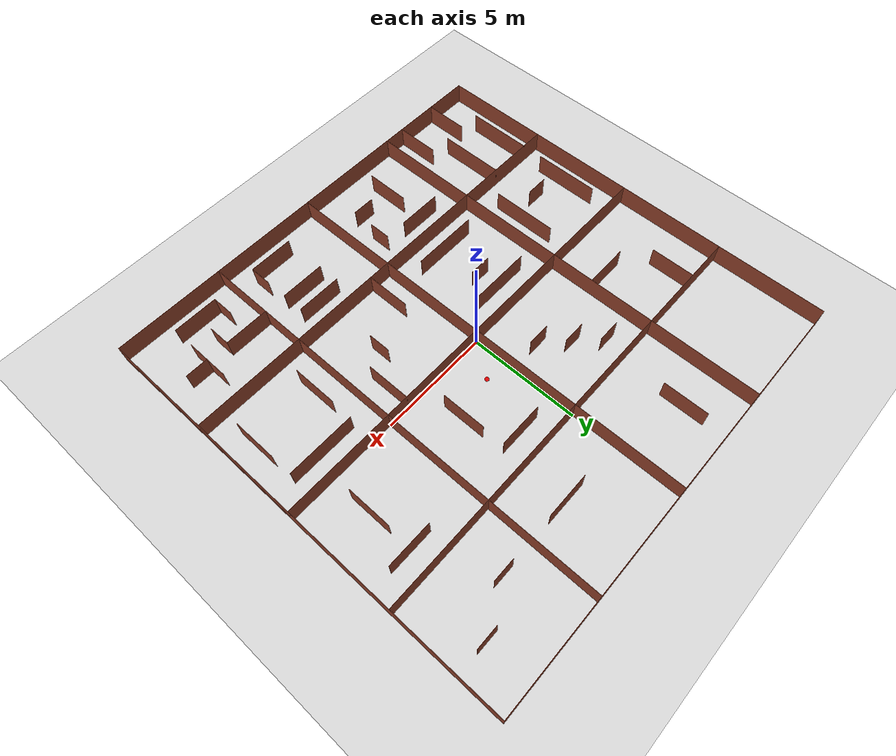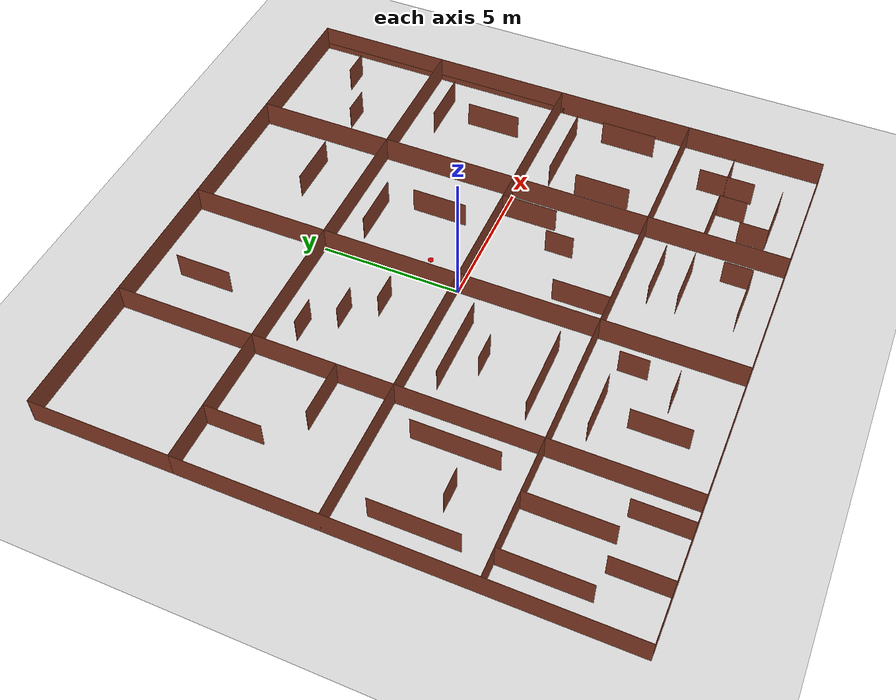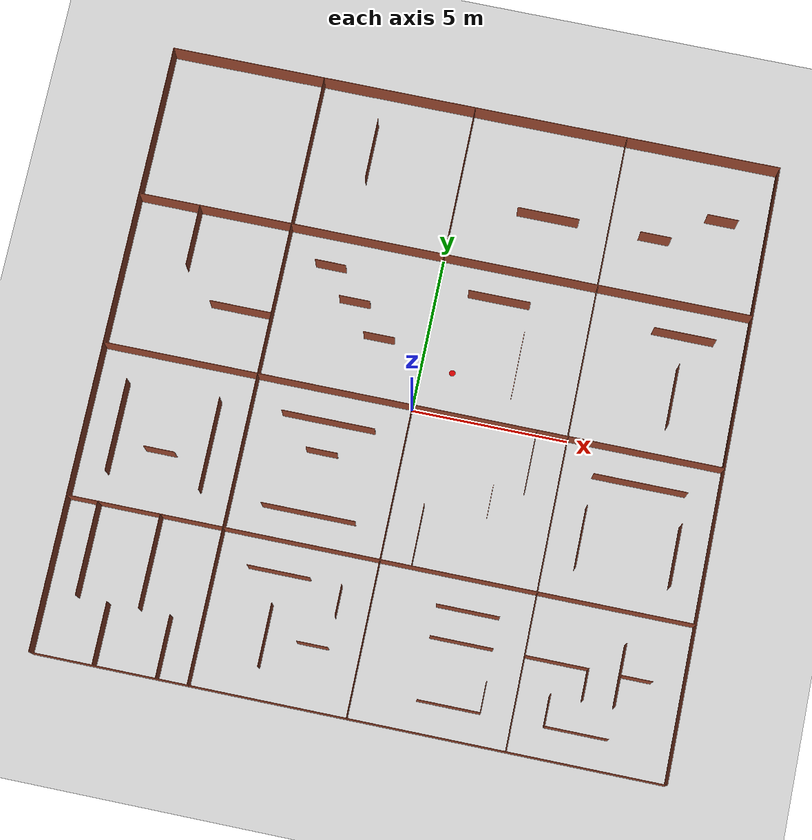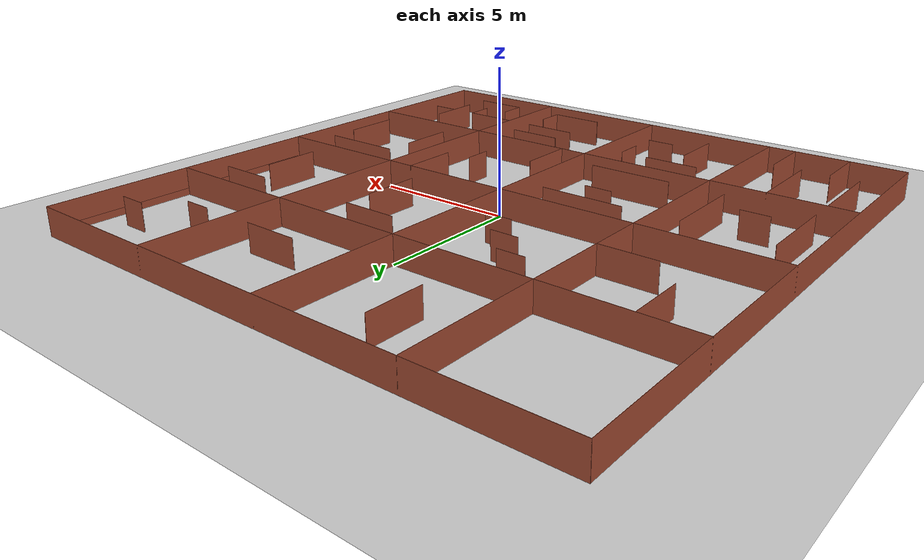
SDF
<sdf version="1.7">
 <world name="default">
  <light name="sun" type="directional">
   <pose>0 0 10 0 -0 0</pose>
   <diffuse>0.8 0.8 0.8 1</diffuse>
   <specular>0.2 0.2 0.2 1</specular>
   <attenuation>
    <range>1000</range>
    <constant>0.9</constant>
    <linear>0.01</linear>
    <quadratic>0.001</quadratic>
   </attenuation>
   <direction>-0.5 0.1 -0.9</direction>
   <spot><inner_angle>0</inner_angle><outer_angle>0</outer_angle><falloff>0</falloff></spot>
  </light>
  <model name="ground_plane">
   <static>1</static>
   <link name="link">
    <collision name="collision">
     <geometry><plane><normal>0 0 1</normal><size>100 100</size></plane></geometry>
     <surface>
      <contact><collide_bitmask>65535</collide_bitmask></contact>
      <friction><ode><mu>100</mu><mu2>50</mu2></ode></friction>
     </surface>
    </collision>
    <visual name="visual">
     <cast_shadows>0</cast_shadows>
     <geometry><plane><normal>0 0 1</normal><size>100 100</size></plane></geometry>
     <material>
      <script><uri>file://media/materials/scripts/gazebo.material</uri><name>Gazebo/Grey</name></script>
     </material>
    </visual>
   </link>
  </model>
  <gravity>0 0 -9.8</gravity>
  <magnetic_field>6e-06 2.3e-05 -4.2e-05</magnetic_field>
  <atmosphere type="adiabatic"/>
  <physics type="ode">
   <max_step_size>0.001</max_step_size>
   <real_time_factor>1</real_time_factor>
   <real_time_update_rate>1000</real_time_update_rate>
  </physics>
  <scene><ambient>0.4 0.4 0.4 1</ambient><background>0.7 0.7 0.7 1</background><shadows>1</shadows></scene>
  <spherical_coordinates>
   <surface_model>EARTH_WGS84</surface_model>
   <latitude_deg>0</latitude_deg>
   <longitude_deg>0</longitude_deg>
   <elevation>0</elevation>
   <heading_deg>0</heading_deg>
  </spherical_coordinates>
  <model name="cur_1.0">
   <link name="Wall_101">
    <collision name="Wall_101_Collision">
     <geometry><box><size>0.01 0.01 1</size></box></geometry>
     <pose>0 0 0.5 0 -0 0</pose>
    </collision>
    <visual name="Wall_101_Visual">
     <pose>0 0 0.5 0 -0 0</pose>
     <geometry><box><size>0.01 0.01 1</size></box></geometry>
     <material>
      <script><uri>file://media/materials/scripts/gazebo.material</uri><name>Gazebo/Bricks</name></script>
      <ambient>1 1 1 1</ambient>
     </material>
     <meta><layer>0</layer></meta>
    </visual>
    <pose>2 -9 0 0 -0 0</pose>
   </link>
   <link name="Wall_109">
    <collision name="Wall_109_Collision">
     <geometry><box><size>3.01 0.01 1</size></box></geometry>
     <pose>0 0 0.5 0 -0 0</pose>
    </collision>
    <visual name="Wall_109_Visual">
     <pose>0 0 0.5 0 -0 0</pose>
     <geometry><box><size>3.01 0.01 1</size></box></geometry>
     <material>
      <script><uri>file://media/materials/scripts/gazebo.material</uri><name>Gazebo/Bricks</name></script>
      <ambient>1 1 1 1</ambient>
     </material>
     <meta><layer>0</layer></meta>
    </visual>
    <pose>7.5 -1 0 0 -0 0</pose>
   </link>
   <link name="Wall_113">
    <collision name="Wall_113_Collision">
     <geometry><box><size>2.01 0.01 1</size></box></geometry>
     <pose>0 0 0.5 0 -0 0</pose>
    </collision>
    <visual name="Wall_113_Visual">
     <pose>0 0 0.5 0 -0 0</pose>
     <geometry><box><size>2.01 0.01 1</size></box></geometry>
     <material>
      <script><uri>file://media/materials/scripts/gazebo.material</uri><name>Gazebo/Bricks</name></script>
      <ambient>1 1 1 1</ambient>
     </material>
     <meta><layer>0</layer></meta>
    </visual>
    <pose>1 -4 0 0 -0 -1.5708</pose>
   </link>
   <link name="Wall_115">
    <collision name="Wall_115_Collision">
     <geometry><box><size>1.01 0.01 1</size></box></geometry>
     <pose>0 0 0.5 0 -0 0</pose>
    </collision>
    <visual name="Wall_115_Visual">
     <pose>0 0 0.5 0 -0 0</pose>
     <geometry><box><size>1.01 0.01 1</size></box></geometry>
     <material>
      <script><uri>file://media/materials/scripts/gazebo.material</uri><name>Gazebo/Bricks</name></script>
      <ambient>1 1 1 1</ambient>
     </material>
     <meta><layer>0</layer></meta>
    </visual>
    <pose>3 -2.5 0 0 -0 -1.5708</pose>
   </link>
   <link name="Wall_117">
    <collision name="Wall_117_Collision">
     <geometry><box><size>2.01 0.01 1</size></box></geometry>
     <pose>0 0 0.5 0 -0 0</pose>
    </collision>
    <visual name="Wall_117_Visual">
     <pose>0 0 0.5 0 -0 0</pose>
     <geometry><box><size>2.01 0.01 1</size></box></geometry>
     <material>
      <script><uri>file://media/materials/scripts/gazebo.material</uri><name>Gazebo/Bricks</name></script>
      <ambient>1 1 1 1</ambient>
     </material>
     <meta><layer>0</layer></meta>
    </visual>
    <pose>4 -1 0 0 -0 -1.5708</pose>
   </link>
   <link name="Wall_122">
    <collision name="Wall_122_Collision">
     <geometry><box><size>2.01 0.01 1</size></box></geometry>
     <pose>0 0 0.5 0 -0 0</pose>
    </collision>
    <visual name="Wall_122_Visual">
     <pose>0 0 0.5 0 -0 0</pose>
     <geometry><box><size>2.01 0.01 1</size></box></geometry>
     <material>
      <script><uri>file://media/materials/scripts/gazebo.material</uri><name>Gazebo/Bricks</name></script>
      <ambient>1 1 1 1</ambient>
     </material>
     <meta><layer>0</layer></meta>
    </visual>
    <pose>-8 -9 0 0 -0 -1.5708</pose>
   </link>
   <link name="Wall_125">
    <collision name="Wall_125_Collision">
     <geometry><box><size>3.01 0.01 1</size></box></geometry>
     <pose>0 0 0.5 0 -0 0</pose>
    </collision>
    <visual name="Wall_125_Visual">
     <pose>0 0 0.5 0 -0 0</pose>
     <geometry><box><size>3.01 0.01 1</size></box></geometry>
     <material>
      <script><uri>file://media/materials/scripts/gazebo.material</uri><name>Gazebo/Bricks</name></script>
      <ambient>1 1 1 1</ambient>
     </material>
     <meta><layer>0</layer></meta>
    </visual>
    <pose>-7 -6.5 0 0 -0 -1.5708</pose>
   </link>
   <link name="Wall_127">
    <collision name="Wall_127_Collision">
     <geometry><box><size>2.01 0.01 1</size></box></geometry>
     <pose>0 0 0.5 0 -0 0</pose>
    </collision>
    <visual name="Wall_127_Visual">
     <pose>0 0 0.5 0 -0 0</pose>
     <geometry><box><size>2.01 0.01 1</size></box></geometry>
     <material>
      <script><uri>file://media/materials/scripts/gazebo.material</uri><name>Gazebo/Bricks</name></script>
      <ambient>1 1 1 1</ambient>
     </material>
     <meta><layer>0</layer></meta>
    </visual>
    <pose>-6 -9 0 0 -0 -1.5708</pose>
   </link>
   <link name="Wall_13">
    <collision name="Wall_13_Collision">
     <geometry><box><size>20.01 0.01 1</size></box></geometry>
     <pose>0 0 0.5 0 -0 0</pose>
    </collision>
    <visual name="Wall_13_Visual">
     <pose>0 0 0.5 0 -0 0</pose>
     <geometry><box><size>20.01 0.01 1</size></box></geometry>
     <material>
      <script><uri>file://media/materials/scripts/gazebo.material</uri><name>Gazebo/Bricks</name></script>
      <ambient>1 1 1 1</ambient>
     </material>
     <meta><layer>0</layer></meta>
    </visual>
    <pose>-5 0 0 0 -0 -1.5708</pose>
   </link>
   <link name="Wall_133">
    <collision name="Wall_133_Collision">
     <geometry><box><size>3.01 0.01 1</size></box></geometry>
     <pose>0 0 0.5 0 -0 0</pose>
    </collision>
    <visual name="Wall_133_Visual">
     <pose>0 0 0.5 0 -0 0</pose>
     <geometry><box><size>3.01 0.01 1</size></box></geometry>
     <material>
      <script><uri>file://media/materials/scripts/gazebo.material</uri><name>Gazebo/Bricks</name></script>
      <ambient>1 1 1 1</ambient>
     </material>
     <meta><layer>0</layer></meta>
    </visual>
    <pose>-9 -2.5 0 0 -0 1.5708</pose>
   </link>
   <link name="Wall_135">
    <collision name="Wall_135_Collision">
     <geometry><box><size>1.01 0.01 1</size></box></geometry>
     <pose>0 0 0.5 0 -0 0</pose>
    </collision>
    <visual name="Wall_135_Visual">
     <pose>0 0 0.5 0 -0 0</pose>
     <geometry><box><size>1.01 0.01 1</size></box></geometry>
     <material>
      <script><uri>file://media/materials/scripts/gazebo.material</uri><name>Gazebo/Bricks</name></script>
      <ambient>1 1 1 1</ambient>
     </material>
     <meta><layer>0</layer></meta>
    </visual>
    <pose>-7.5 -3 0 0 -0 0</pose>
   </link>
   <link name="Wall_137">
    <collision name="Wall_137_Collision">
     <geometry><box><size>3.01 0.01 1</size></box></geometry>
     <pose>0 0 0.5 0 -0 0</pose>
    </collision>
    <visual name="Wall_137_Visual">
     <pose>0 0 0.5 0 -0 0</pose>
     <geometry><box><size>3.01 0.01 1</size></box></geometry>
     <material>
      <script><uri>file://media/materials/scripts/gazebo.material</uri><name>Gazebo/Bricks</name></script>
      <ambient>1 1 1 1</ambient>
     </material>
     <meta><layer>0</layer></meta>
    </visual>
    <pose>-6 -2.5 0 0 -0 -1.5708</pose>
   </link>
   <link name="Wall_139">
    <collision name="Wall_139_Collision">
     <geometry><box><size>3.01 0.01 1</size></box></geometry>
     <pose>0 0 0.5 0 -0 0</pose>
    </collision>
    <visual name="Wall_139_Visual">
     <pose>0 0 0.5 0 -0 0</pose>
     <geometry><box><size>3.01 0.01 1</size></box></geometry>
     <material>
      <script><uri>file://media/materials/scripts/gazebo.material</uri><name>Gazebo/Bricks</name></script>
      <ambient>1 1 1 1</ambient>
     </material>
     <meta><layer>0</layer></meta>
    </visual>
    <pose>-2.5 -1 0 0 -0 0</pose>
   </link>
   <link name="Wall_143">
    <collision name="Wall_143_Collision">
     <geometry><box><size>1.01 0.01 1</size></box></geometry>
     <pose>0 0 0.5 0 -0 0</pose>
    </collision>
    <visual name="Wall_143_Visual">
     <pose>0 0 0.5 0 -0 0</pose>
     <geometry><box><size>1.01 0.01 1</size></box></geometry>
     <material>
      <script><uri>file://media/materials/scripts/gazebo.material</uri><name>Gazebo/Bricks</name></script>
      <ambient>1 1 1 1</ambient>
     </material>
     <meta><layer>0</layer></meta>
    </visual>
    <pose>-2.5 -2 0 0 -0 0</pose>
   </link>
   <link name="Wall_145">
    <collision name="Wall_145_Collision">
     <geometry><box><size>3.01 0.01 1</size></box></geometry>
     <pose>0 0 0.5 0 -0 0</pose>
    </collision>
    <visual name="Wall_145_Visual">
     <pose>0 0 0.5 0 -0 0</pose>
     <geometry><box><size>3.01 0.01 1</size></box></geometry>
     <material>
      <script><uri>file://media/materials/scripts/gazebo.material</uri><name>Gazebo/Bricks</name></script>
      <ambient>1 1 1 1</ambient>
     </material>
     <meta><layer>0</layer></meta>
    </visual>
    <pose>-2.5 -4 0 0 -0 0</pose>
   </link>
   <link name="Wall_147">
    <collision name="Wall_147_Collision">
     <geometry><box><size>2.01 0.01 1</size></box></geometry>
     <pose>0 0 0.5 0 -0 0</pose>
    </collision>
    <visual name="Wall_147_Visual">
     <pose>0 0 0.5 0 -0 0</pose>
     <geometry><box><size>2.01 0.01 1</size></box></geometry>
     <material>
      <script><uri>file://media/materials/scripts/gazebo.material</uri><name>Gazebo/Bricks</name></script>
      <ambient>1 1 1 1</ambient>
     </material>
     <meta><layer>0</layer></meta>
    </visual>
    <pose>6 -3 0 0 -0 -1.5708</pose>
   </link>
   <link name="Wall_149">
    <collision name="Wall_149_Collision">
     <geometry><box><size>2.01 0.01 1</size></box></geometry>
     <pose>0 0 0.5 0 -0 0</pose>
    </collision>
    <visual name="Wall_149_Visual">
     <pose>0 0 0.5 0 -0 0</pose>
     <geometry><box><size>2.01 0.01 1</size></box></geometry>
     <material>
      <script><uri>file://media/materials/scripts/gazebo.material</uri><name>Gazebo/Bricks</name></script>
      <ambient>1 1 1 1</ambient>
     </material>
     <meta><layer>0</layer></meta>
    </visual>
    <pose>9 -3 0 0 -0 -1.5708</pose>
   </link>
   <link name="Wall_15">
    <collision name="Wall_15_Collision">
     <geometry><box><size>20.01 0.01 1</size></box></geometry>
     <pose>0 0 0.5 0 -0 0</pose>
    </collision>
    <visual name="Wall_15_Visual">
     <pose>0 0 0.5 0 -0 0</pose>
     <geometry><box><size>20.01 0.01 1</size></box></geometry>
     <material>
      <script><uri>file://media/materials/scripts/gazebo.material</uri><name>Gazebo/Bricks</name></script>
      <ambient>1 1 1 1</ambient>
     </material>
     <meta><layer>0</layer></meta>
    </visual>
    <pose>0 0 0 0 -0 -1.5708</pose>
   </link>
   <link name="Wall_151">
    <collision name="Wall_151_Collision">
     <geometry><box><size>2.01 0.01 1</size></box></geometry>
     <pose>0 0 0.5 0 -0 0</pose>
    </collision>
    <visual name="Wall_151_Visual">
     <pose>0 0 0.5 0 -0 0</pose>
     <geometry><box><size>2.01 0.01 1</size></box></geometry>
     <material>
      <script><uri>file://media/materials/scripts/gazebo.material</uri><name>Gazebo/Bricks</name></script>
      <ambient>1 1 1 1</ambient>
     </material>
     <meta><layer>0</layer></meta>
    </visual>
    <pose>8 2 0 0 -0 1.5708</pose>
   </link>
   <link name="Wall_157">
    <collision name="Wall_157_Collision">
     <geometry><box><size>2.01 0.01 1</size></box></geometry>
     <pose>0 0 0.5 0 -0 0</pose>
    </collision>
    <visual name="Wall_157_Visual">
     <pose>0 0 0.5 0 -0 0</pose>
     <geometry><box><size>2.01 0.01 1</size></box></geometry>
     <material>
      <script><uri>file://media/materials/scripts/gazebo.material</uri><name>Gazebo/Bricks</name></script>
      <ambient>1 1 1 1</ambient>
     </material>
     <meta><layer>0</layer></meta>
    </visual>
    <pose>3 7 0 0 -0 0</pose>
   </link>
   <link name="Wall_159">
    <collision name="Wall_159_Collision">
     <geometry><box><size>2.01 0.01 1</size></box></geometry>
     <pose>0 0 0.5 0 -0 0</pose>
    </collision>
    <visual name="Wall_159_Visual">
     <pose>0 0 0.5 0 -0 0</pose>
     <geometry><box><size>2.01 0.01 1</size></box></geometry>
     <material>
      <script><uri>file://media/materials/scripts/gazebo.material</uri><name>Gazebo/Bricks</name></script>
      <ambient>1 1 1 1</ambient>
     </material>
     <meta><layer>0</layer></meta>
    </visual>
    <pose>2 4 0 0 -0 0</pose>
   </link>
   <link name="Wall_162">
    <collision name="Wall_162_Collision">
     <geometry><box><size>2.01 0.01 1</size></box></geometry>
     <pose>0 0 0.5 0 -0 0</pose>
    </collision>
    <visual name="Wall_162_Visual">
     <pose>0 0 0.5 0 -0 0</pose>
     <geometry><box><size>2.01 0.01 1</size></box></geometry>
     <material>
      <script><uri>file://media/materials/scripts/gazebo.material</uri><name>Gazebo/Bricks</name></script>
      <ambient>1 1 1 1</ambient>
     </material>
     <meta><layer>0</layer></meta>
    </visual>
    <pose>-8 4 0 0 -0 -1.5708</pose>
   </link>
   <link name="Wall_165">
    <collision name="Wall_165_Collision">
     <geometry><box><size>2.01 0.01 1</size></box></geometry>
     <pose>0 0 0.5 0 -0 0</pose>
    </collision>
    <visual name="Wall_165_Visual">
     <pose>0 0 0.5 0 -0 0</pose>
     <geometry><box><size>2.01 0.01 1</size></box></geometry>
     <material>
      <script><uri>file://media/materials/scripts/gazebo.material</uri><name>Gazebo/Bricks</name></script>
      <ambient>1 1 1 1</ambient>
     </material>
     <meta><layer>0</layer></meta>
    </visual>
    <pose>-6 2 0 0 -0 0</pose>
   </link>
   <link name="Wall_169">
    <collision name="Wall_169_Collision">
     <geometry><box><size>1.01 0.01 1</size></box></geometry>
     <pose>0 0 0.5 0 -0 0</pose>
    </collision>
    <visual name="Wall_169_Visual">
     <pose>0 0 0.5 0 -0 0</pose>
     <geometry><box><size>1.01 0.01 1</size></box></geometry>
     <material>
      <script><uri>file://media/materials/scripts/gazebo.material</uri><name>Gazebo/Bricks</name></script>
      <ambient>1 1 1 1</ambient>
     </material>
     <meta><layer>0</layer></meta>
    </visual>
    <pose>-3.5 4 0 0 -0 0</pose>
   </link>
   <link name="Wall_17">
    <collision name="Wall_17_Collision">
     <geometry><box><size>20.01 0.01 1</size></box></geometry>
     <pose>0 0 0.5 0 -0 0</pose>
    </collision>
    <visual name="Wall_17_Visual">
     <pose>0 0 0.5 0 -0 0</pose>
     <geometry><box><size>20.01 0.01 1</size></box></geometry>
     <material>
      <script><uri>file://media/materials/scripts/gazebo.material</uri><name>Gazebo/Bricks</name></script>
      <ambient>1 1 1 1</ambient>
     </material>
     <meta><layer>0</layer></meta>
    </visual>
    <pose>5 0 0 0 -0 -1.5708</pose>
   </link>
   <link name="Wall_173">
    <collision name="Wall_173_Collision">
     <geometry><box><size>1.01 0.01 1</size></box></geometry>
     <pose>0 0 0.5 0 -0 0</pose>
    </collision>
    <visual name="Wall_173_Visual">
     <pose>0 0 0.5 0 -0 0</pose>
     <geometry><box><size>1.01 0.01 1</size></box></geometry>
     <material>
      <script><uri>file://media/materials/scripts/gazebo.material</uri><name>Gazebo/Bricks</name></script>
      <ambient>1 1 1 1</ambient>
     </material>
     <meta><layer>0</layer></meta>
    </visual>
    <pose>8.5 8 0 0 -0 0</pose>
   </link>
   <link name="Wall_175">
    <collision name="Wall_175_Collision">
     <geometry><box><size>1.01 0.01 1</size></box></geometry>
     <pose>0 0 0.5 0 -0 0</pose>
    </collision>
    <visual name="Wall_175_Visual">
     <pose>0 0 0.5 0 -0 0</pose>
     <geometry><box><size>1.01 0.01 1</size></box></geometry>
     <material>
      <script><uri>file://media/materials/scripts/gazebo.material</uri><name>Gazebo/Bricks</name></script>
      <ambient>1 1 1 1</ambient>
     </material>
     <meta><layer>0</layer></meta>
    </visual>
    <pose>-2.5 3 0 0 -0 0</pose>
   </link>
   <link name="Wall_177">
    <collision name="Wall_177_Collision">
     <geometry><box><size>1.01 0.01 1</size></box></geometry>
     <pose>0 0 0.5 0 -0 0</pose>
    </collision>
    <visual name="Wall_177_Visual">
     <pose>0 0 0.5 0 -0 0</pose>
     <geometry><box><size>1.01 0.01 1</size></box></geometry>
     <material>
      <script><uri>file://media/materials/scripts/gazebo.material</uri><name>Gazebo/Bricks</name></script>
      <ambient>1 1 1 1</ambient>
     </material>
     <meta><layer>0</layer></meta>
    </visual>
    <pose>-1.5 2 0 0 -0 0</pose>
   </link>
   <link name="Wall_179">
    <collision name="Wall_179_Collision">
     <geometry><box><size>2.01 0.01 1</size></box></geometry>
     <pose>0 0 0.5 0 -0 0</pose>
    </collision>
    <visual name="Wall_179_Visual">
     <pose>0 0 0.5 0 -0 0</pose>
     <geometry><box><size>2.01 0.01 1</size></box></geometry>
     <material>
      <script><uri>file://media/materials/scripts/gazebo.material</uri><name>Gazebo/Bricks</name></script>
      <ambient>1 1 1 1</ambient>
     </material>
     <meta><layer>0</layer></meta>
    </visual>
    <pose>3 2 0 0 -0 1.5708</pose>
   </link>
   <link name="Wall_185">
    <collision name="Wall_185_Collision">
     <geometry><box><size>2.01 0.01 1</size></box></geometry>
     <pose>0 0 0.5 0 -0 0</pose>
    </collision>
    <visual name="Wall_185_Visual">
     <pose>0 0 0.5 0 -0 0</pose>
     <geometry><box><size>2.01 0.01 1</size></box></geometry>
     <material>
      <script><uri>file://media/materials/scripts/gazebo.material</uri><name>Gazebo/Bricks</name></script>
      <ambient>1 1 1 1</ambient>
     </material>
     <meta><layer>0</layer></meta>
    </visual>
    <pose>3 -6 0 0 -0 0</pose>
   </link>
   <link name="Wall_187">
    <collision name="Wall_187_Collision">
     <geometry><box><size>2.01 0.01 1</size></box></geometry>
     <pose>0 0 0.5 0 -0 0</pose>
    </collision>
    <visual name="Wall_187_Visual">
     <pose>0 0 0.5 0 -0 0</pose>
     <geometry><box><size>2.01 0.01 1</size></box></geometry>
     <material>
      <script><uri>file://media/materials/scripts/gazebo.material</uri><name>Gazebo/Bricks</name></script>
      <ambient>1 1 1 1</ambient>
     </material>
     <meta><layer>0</layer></meta>
    </visual>
    <pose>3 -9 0 0 -0 0</pose>
   </link>
   <link name="Wall_24">
    <collision name="Wall_24_Collision">
     <geometry><box><size>20.01 0.01 1</size></box></geometry>
     <pose>0 0 0.5 0 -0 0</pose>
    </collision>
    <visual name="Wall_24_Visual">
     <pose>0 0 0.5 0 -0 0</pose>
     <geometry><box><size>20.01 0.01 1</size></box></geometry>
     <material>
      <script><uri>file://media/materials/scripts/gazebo.material</uri><name>Gazebo/Bricks</name></script>
      <ambient>1 1 1 1</ambient>
     </material>
     <meta><layer>0</layer></meta>
    </visual>
    <pose>0 10 0 0 -0 0</pose>
   </link>
   <link name="Wall_33">
    <collision name="Wall_33_Collision">
     <geometry><box><size>20.01 0.01 1</size></box></geometry>
     <pose>0 0 0.5 0 -0 0</pose>
    </collision>
    <visual name="Wall_33_Visual">
     <pose>0 0 0.5 0 -0 0</pose>
     <geometry><box><size>20.01 0.01 1</size></box></geometry>
     <material>
      <script><uri>file://media/materials/scripts/gazebo.material</uri><name>Gazebo/Bricks</name></script>
      <ambient>1 1 1 1</ambient>
     </material>
     <meta><layer>0</layer></meta>
    </visual>
    <pose>0 5 0 0 -0 3.14159</pose>
   </link>
   <link name="Wall_35">
    <collision name="Wall_35_Collision">
     <geometry><box><size>20.01 0.01 1</size></box></geometry>
     <pose>0 0 0.5 0 -0 0</pose>
    </collision>
    <visual name="Wall_35_Visual">
     <pose>0 0 0.5 0 -0 0</pose>
     <geometry><box><size>20.01 0.01 1</size></box></geometry>
     <material>
      <script><uri>file://media/materials/scripts/gazebo.material</uri><name>Gazebo/Bricks</name></script>
      <ambient>1 1 1 1</ambient>
     </material>
     <meta><layer>0</layer></meta>
    </visual>
    <pose>0 0 0 0 -0 3.14159</pose>
   </link>
   <link name="Wall_37">
    <collision name="Wall_37_Collision">
     <geometry><box><size>20.01 0.01 1</size></box></geometry>
     <pose>0 0 0.5 0 -0 0</pose>
    </collision>
    <visual name="Wall_37_Visual">
     <pose>0 0 0.5 0 -0 0</pose>
     <geometry><box><size>20.01 0.01 1</size></box></geometry>
     <material>
      <script><uri>file://media/materials/scripts/gazebo.material</uri><name>Gazebo/Bricks</name></script>
      <ambient>1 1 1 1</ambient>
     </material>
     <meta><layer>0</layer></meta>
    </visual>
    <pose>0 -5 0 0 -0 0</pose>
   </link>
   <link name="Wall_45">
    <collision name="Wall_45_Collision">
     <geometry><box><size>2.01 0.01 1</size></box></geometry>
     <pose>0 0 0.5 0 -0 0</pose>
    </collision>
    <visual name="Wall_45_Visual">
     <pose>0 0 0.5 0 -0 0</pose>
     <geometry><box><size>2.01 0.01 1</size></box></geometry>
     <material>
      <script><uri>file://media/materials/scripts/gazebo.material</uri><name>Gazebo/Bricks</name></script>
      <ambient>1 1 1 1</ambient>
     </material>
     <meta><layer>0</layer></meta>
    </visual>
    <pose>8 4 0 0 -0 0</pose>
   </link>
   <link name="Wall_6">
    <collision name="Wall_6_Collision">
     <geometry><box><size>20.01 0.01 1</size></box></geometry>
     <pose>0 0 0.5 0 -0 0</pose>
    </collision>
    <visual name="Wall_6_Visual">
     <pose>0 0 0.5 0 -0 0</pose>
     <geometry><box><size>20.01 0.01 1</size></box></geometry>
     <material>
      <script><uri>file://media/materials/scripts/gazebo.material</uri><name>Gazebo/Bricks</name></script>
      <ambient>1 1 1 1</ambient>
     </material>
     <meta><layer>0</layer></meta>
    </visual>
    <pose>-10 0 0 0 -0 -1.5708</pose>
   </link>
   <link name="Wall_63">
    <collision name="Wall_63_Collision">
     <geometry><box><size>2.01 0.01 1</size></box></geometry>
     <pose>0 0 0.5 0 -0 0</pose>
    </collision>
    <visual name="Wall_63_Visual">
     <pose>0 0 0.5 0 -0 0</pose>
     <geometry><box><size>2.01 0.01 1</size></box></geometry>
     <material>
      <script><uri>file://media/materials/scripts/gazebo.material</uri><name>Gazebo/Bricks</name></script>
      <ambient>1 1 1 1</ambient>
     </material>
     <meta><layer>0</layer></meta>
    </visual>
    <pose>-3 8 0 0 -0 1.5708</pose>
   </link>
   <link name="Wall_67">
    <collision name="Wall_67_Collision">
     <geometry><box><size>1.01 0.01 1</size></box></geometry>
     <pose>0 0 0.5 0 -0 0</pose>
    </collision>
    <visual name="Wall_67_Visual">
     <pose>0 0 0.5 0 -0 0</pose>
     <geometry><box><size>1.01 0.01 1</size></box></geometry>
     <material>
      <script><uri>file://media/materials/scripts/gazebo.material</uri><name>Gazebo/Bricks</name></script>
      <ambient>1 1 1 1</ambient>
     </material>
     <meta><layer>0</layer></meta>
    </visual>
    <pose>6.5 7 0 0 -0 0</pose>
   </link>
   <link name="Wall_69">
    <collision name="Wall_69_Collision">
     <geometry><box><size>3.01 0.01 1</size></box></geometry>
     <pose>0 0 0.5 0 -0 0</pose>
    </collision>
    <visual name="Wall_69_Visual">
     <pose>0 0 0.5 0 -0 0</pose>
     <geometry><box><size>3.01 0.01 1</size></box></geometry>
     <material>
      <script><uri>file://media/materials/scripts/gazebo.material</uri><name>Gazebo/Bricks</name></script>
      <ambient>1 1 1 1</ambient>
     </material>
     <meta><layer>0</layer></meta>
    </visual>
    <pose>-9 -6.5 0 0 -0 -1.5708</pose>
   </link>
   <link name="Wall_7">
    <collision name="Wall_7_Collision">
     <geometry><box><size>20.01 0.01 1</size></box></geometry>
     <pose>0 0 0.5 0 -0 0</pose>
    </collision>
    <visual name="Wall_7_Visual">
     <pose>0 0 0.5 0 -0 0</pose>
     <geometry><box><size>20.01 0.01 1</size></box></geometry>
     <material>
      <script><uri>file://media/materials/scripts/gazebo.material</uri><name>Gazebo/Bricks</name></script>
      <ambient>1 1 1 1</ambient>
     </material>
     <meta><layer>0</layer></meta>
    </visual>
    <pose>0 -10 0 0 -0 0</pose>
   </link>
   <link name="Wall_73">
    <collision name="Wall_73_Collision">
     <geometry><box><size>2.01 0.01 1</size></box></geometry>
     <pose>0 0 0.5 0 -0 0</pose>
    </collision>
    <visual name="Wall_73_Visual">
     <pose>0 0 0.5 0 -0 0</pose>
     <geometry><box><size>2.01 0.01 1</size></box></geometry>
     <material>
      <script><uri>file://media/materials/scripts/gazebo.material</uri><name>Gazebo/Bricks</name></script>
      <ambient>1 1 1 1</ambient>
     </material>
     <meta><layer>0</layer></meta>
    </visual>
    <pose>-3 -6 0 0 -0 0</pose>
   </link>
   <link name="Wall_75">
    <collision name="Wall_75_Collision">
     <geometry><box><size>2.01 0.01 1</size></box></geometry>
     <pose>0 0 0.5 0 -0 0</pose>
    </collision>
    <visual name="Wall_75_Visual">
     <pose>0 0 0.5 0 -0 0</pose>
     <geometry><box><size>2.01 0.01 1</size></box></geometry>
     <material>
      <script><uri>file://media/materials/scripts/gazebo.material</uri><name>Gazebo/Bricks</name></script>
      <ambient>1 1 1 1</ambient>
     </material>
     <meta><layer>0</layer></meta>
    </visual>
    <pose>-3 -8 0 0 -0 -1.5708</pose>
   </link>
   <link name="Wall_77">
    <collision name="Wall_77_Collision">
     <geometry><box><size>1.01 0.01 1</size></box></geometry>
     <pose>0 0 0.5 0 -0 0</pose>
    </collision>
    <visual name="Wall_77_Visual">
     <pose>0 0 0.5 0 -0 0</pose>
     <geometry><box><size>1.01 0.01 1</size></box></geometry>
     <material>
      <script><uri>file://media/materials/scripts/gazebo.material</uri><name>Gazebo/Bricks</name></script>
      <ambient>1 1 1 1</ambient>
     </material>
     <meta><layer>0</layer></meta>
    </visual>
    <pose>-1.5 -8 0 0 -0 0</pose>
   </link>
   <link name="Wall_79">
    <collision name="Wall_79_Collision">
     <geometry><box><size>1.01 0.01 1</size></box></geometry>
     <pose>0 0 0.5 0 -0 0</pose>
    </collision>
    <visual name="Wall_79_Visual">
     <pose>0 0 0.5 0 -0 0</pose>
     <geometry><box><size>1.01 0.01 1</size></box></geometry>
     <material>
      <script><uri>file://media/materials/scripts/gazebo.material</uri><name>Gazebo/Bricks</name></script>
      <ambient>1 1 1 1</ambient>
     </material>
     <meta><layer>0</layer></meta>
    </visual>
    <pose>-1 -6.5 0 0 -0 -1.5708</pose>
   </link>
   <link name="Wall_8">
    <collision name="Wall_8_Collision">
     <geometry><box><size>20.01 0.01 0.25</size></box></geometry>
     <pose>0 0 0.125 0 -0 0</pose>
    </collision>
    <visual name="Wall_8_Visual">
     <pose>0 0 0.125 0 -0 0</pose>
     <geometry><box><size>20.01 0.01 0.25</size></box></geometry>
     <material>
      <script><uri>file://media/materials/scripts/gazebo.material</uri><name>Gazebo/Bricks</name></script>
      <ambient>1 1 1 1</ambient>
     </material>
     <meta><layer>0</layer></meta>
    </visual>
    <pose>10 0 0 0 -0 1.5708</pose>
   </link>
   <link name="Wall_82">
    <collision name="Wall_82_Collision">
     <geometry><box><size>0.01 0.01 1</size></box></geometry>
     <pose>0 0 0.5 0 -0 0</pose>
    </collision>
    <visual name="Wall_82_Visual">
     <pose>0 0 0.5 0 -0 0</pose>
     <geometry><box><size>0.01 0.01 1</size></box></geometry>
     <material>
      <script><uri>file://media/materials/scripts/gazebo.material</uri><name>Gazebo/Bricks</name></script>
      <ambient>1 1 1 1</ambient>
     </material>
     <meta><layer>0</layer></meta>
    </visual>
    <pose>2 -6 0 0 -0 0</pose>
   </link>
   <link name="Wall_85">
    <collision name="Wall_85_Collision">
     <geometry><box><size>1.01 0.01 1</size></box></geometry>
     <pose>0 0 0.5 0 -0 0</pose>
    </collision>
    <visual name="Wall_85_Visual">
     <pose>0 0 0.5 0 -0 0</pose>
     <geometry><box><size>1.01 0.01 1</size></box></geometry>
     <material>
      <script><uri>file://media/materials/scripts/gazebo.material</uri><name>Gazebo/Bricks</name></script>
      <ambient>1 1 1 1</ambient>
     </material>
     <meta><layer>0</layer></meta>
    </visual>
    <pose>4 -8.5 0 0 -0 1.5708</pose>
   </link>
   <link name="Wall_87">
    <collision name="Wall_87_Collision">
     <geometry><box><size>2.01 0.01 1</size></box></geometry>
     <pose>0 0 0.5 0 -0 0</pose>
    </collision>
    <visual name="Wall_87_Visual">
     <pose>0 0 0.5 0 -0 0</pose>
     <geometry><box><size>2.01 0.01 1</size></box></geometry>
     <material>
      <script><uri>file://media/materials/scripts/gazebo.material</uri><name>Gazebo/Bricks</name></script>
      <ambient>1 1 1 1</ambient>
     </material>
     <meta><layer>0</layer></meta>
    </visual>
    <pose>6 -7 0 0 -0 0</pose>
   </link>
   <link name="Wall_9">
    <collision name="Wall_9_Collision">
     <geometry><box><size>20.01 0.01 1</size></box></geometry>
     <pose>0 0 0.5 0 -0 0</pose>
    </collision>
    <visual name="Wall_9_Visual">
     <pose>0 0 0.5 0 -0 0</pose>
     <geometry><box><size>20.01 0.01 1</size></box></geometry>
     <material>
      <script><uri>file://media/materials/scripts/gazebo.material</uri><name>Gazebo/Bricks</name></script>
      <ambient>1 1 1 1</ambient>
     </material>
     <meta><layer>0</layer></meta>
    </visual>
    <pose>10 0 0 0 -0 -1.5708</pose>
   </link>
   <link name="Wall_90">
    <collision name="Wall_90_Collision">
     <geometry><box><size>1.01 0.01 1</size></box></geometry>
     <pose>0 0 0.5 0 -0 0</pose>
    </collision>
    <visual name="Wall_90_Visual">
     <pose>0 0 0.5 0 -0 0</pose>
     <geometry><box><size>1.01 0.01 1</size></box></geometry>
     <material>
      <script><uri>file://media/materials/scripts/gazebo.material</uri><name>Gazebo/Bricks</name></script>
      <ambient>1 1 1 1</ambient>
     </material>
     <meta><layer>0</layer></meta>
    </visual>
    <pose>7 -7.5 0 0 -0 -1.5708</pose>
   </link>
   <link name="Wall_92">
    <collision name="Wall_92_Collision">
     <geometry><box><size>1.01 0.01 1</size></box></geometry>
     <pose>0 0 0.5 0 -0 0</pose>
    </collision>
    <visual name="Wall_92_Visual">
     <pose>0 0 0.5 0 -0 0</pose>
     <geometry><box><size>1.01 0.01 1</size></box></geometry>
     <material>
      <script><uri>file://media/materials/scripts/gazebo.material</uri><name>Gazebo/Bricks</name></script>
      <ambient>1 1 1 1</ambient>
     </material>
     <meta><layer>0</layer></meta>
    </visual>
    <pose>6 -8.5 0 0 -0 -1.5708</pose>
   </link>
   <link name="Wall_93">
    <collision name="Wall_93_Collision">
     <geometry><box><size>2.01 0.01 1</size></box></geometry>
     <pose>0 0 0.5 0 -0 0</pose>
    </collision>
    <visual name="Wall_93_Visual">
     <pose>0 0 0.5 0 -0 0</pose>
     <geometry><box><size>2.01 0.01 1</size></box></geometry>
     <material>
      <script><uri>file://media/materials/scripts/gazebo.material</uri><name>Gazebo/Bricks</name></script>
      <ambient>1 1 1 1</ambient>
     </material>
     <meta><layer>0</layer></meta>
    </visual>
    <pose>7 -9 0 0 -0 0</pose>
   </link>
   <link name="Wall_95">
    <collision name="Wall_95_Collision">
     <geometry><box><size>2.01 0.01 1</size></box></geometry>
     <pose>0 0 0.5 0 -0 0</pose>
    </collision>
    <visual name="Wall_95_Visual">
     <pose>0 0 0.5 0 -0 0</pose>
     <geometry><box><size>2.01 0.01 1</size></box></geometry>
     <material>
      <script><uri>file://media/materials/scripts/gazebo.material</uri><name>Gazebo/Bricks</name></script>
      <ambient>1 1 1 1</ambient>
     </material>
     <meta><layer>0</layer></meta>
    </visual>
    <pose>8 -7 0 0 -0 -1.5708</pose>
   </link>
   <link name="Wall_97">
    <collision name="Wall_97_Collision">
     <geometry><box><size>1.01 0.01 1</size></box></geometry>
     <pose>0 0 0.5 0 -0 0</pose>
    </collision>
    <visual name="Wall_97_Visual">
     <pose>0 0 0.5 0 -0 0</pose>
     <geometry><box><size>1.01 0.01 1</size></box></geometry>
     <material>
      <script><uri>file://media/materials/scripts/gazebo.material</uri><name>Gazebo/Bricks</name></script>
      <ambient>1 1 1 1</ambient>
     </material>
     <meta><layer>0</layer></meta>
    </visual>
    <pose>8.5 -7 0 0 -0 0</pose>
   </link>
   <link name="Wall_99">
    <collision name="Wall_99_Collision">
     <geometry><box><size>2.01 0.01 1</size></box></geometry>
     <pose>0 0 0.5 0 -0 0</pose>
    </collision>
    <visual name="Wall_99_Visual">
     <pose>0 0 0.5 0 -0 0</pose>
     <geometry><box><size>2.01 0.01 1</size></box></geometry>
     <material>
      <script><uri>file://media/materials/scripts/gazebo.material</uri><name>Gazebo/Bricks</name></script>
      <ambient>1 1 1 1</ambient>
     </material>
     <meta><layer>0</layer></meta>
    </visual>
    <pose>3 -7 0 0 -0 0</pose>
   </link>
   <static>1</static>
  </model>
  <model name="target_red_0">
   <link name="link">
    <inertial>
     <mass>1</mass>
     <inertia><ixx>0.145833</ixx><ixy>0</ixy><ixz>0</ixz><iyy>0.145833</iyy><iyz>0</iyz><izz>0.125</izz></inertia>
    </inertial>
    <visual name="visual">
     <geometry><cylinder><radius>0.1</radius><length>0.01</length></cylinder></geometry>
     <material>
      <script><name>Gazebo/Grey</name><uri>file://media/materials/scripts/gazebo.material</uri></script>
      <shader type="pixel"><normal_map>__default__</normal_map></shader>
      <ambient>0.8 0 0 1</ambient>
      <diffuse>0.8 0 0 1</diffuse>
      <specular>0.8 0 0 1</specular>
      <emissive>0 0 0 1</emissive>
     </material>
    </visual>
    <collision name="collision">
     <geometry><cylinder><radius>0.1</radius><length>0.01</length></cylinder></geometry>
     <surface>
      <friction>
       <ode><mu>1</mu><mu2>1</mu2><fdir1>0 0 0</fdir1><slip1>0</slip1><slip2>0</slip2></ode>
       <torsional>
        <coefficient>1</coefficient>
        <patch_radius>0</patch_radius>
        <surface_radius>0</surface_radius>
        <use_patch_radius>1</use_patch_radius>
        <ode><slip>0</slip></ode>
       </torsional>
      </friction>
      <bounce><restitution_coefficient>0</restitution_coefficient><threshold>1e+06</threshold></bounce>
      <contact>
       <collide_without_contact>0</collide_without_contact>
       <collide_without_contact_bitmask>1</collide_without_contact_bitmask>
       <collide_bitmask>1</collide_bitmask>
       <ode>
        <soft_cfm>0</soft_cfm>
        <soft_erp>0.2</soft_erp>
        <kp>1e+13</kp>
        <kd>1</kd>
        <max_vel>0.01</max_vel>
        <min_depth>0</min_depth>
       </ode>
       <bullet>
        <split_impulse>1</split_impulse>
        <split_impulse_penetration_threshold>-0.01</split_impulse_penetration_threshold>
        <soft_cfm>0</soft_cfm>
        <soft_erp>0.2</soft_erp>
        <kp>1e+13</kp>
        <kd>1</kd>
       </bullet>
      </contact>
     </surface>
    </collision>
   </link>
   <static>0</static>
   <pose>1 1.4512 0 0 -0 0</pose>
  </model>
 </world>
</sdf>
